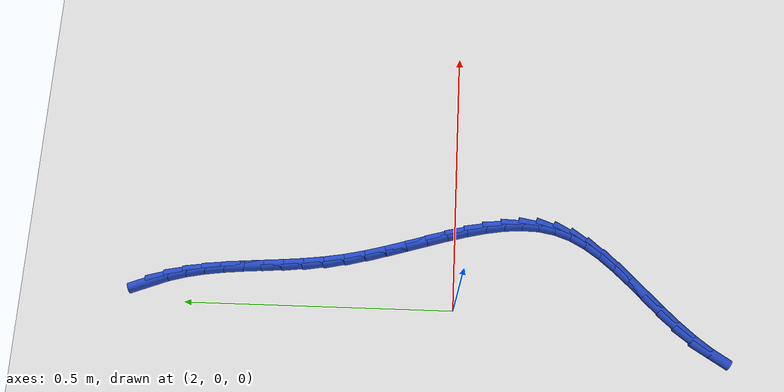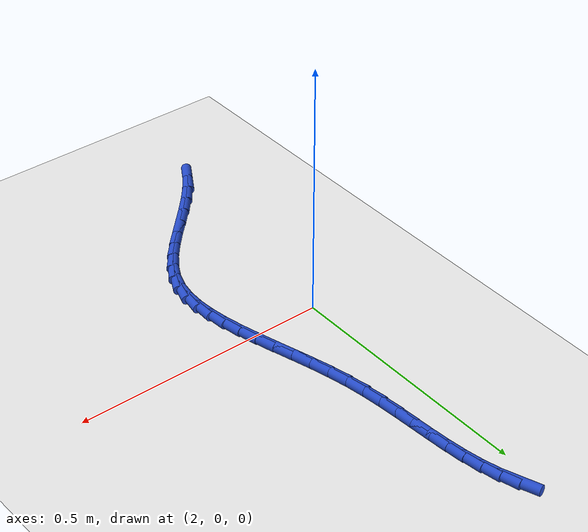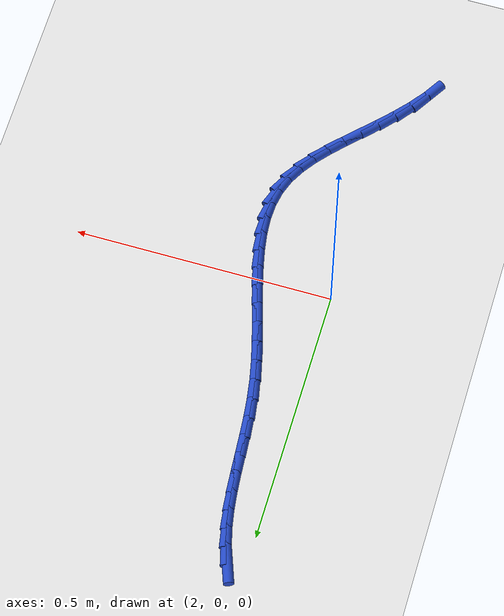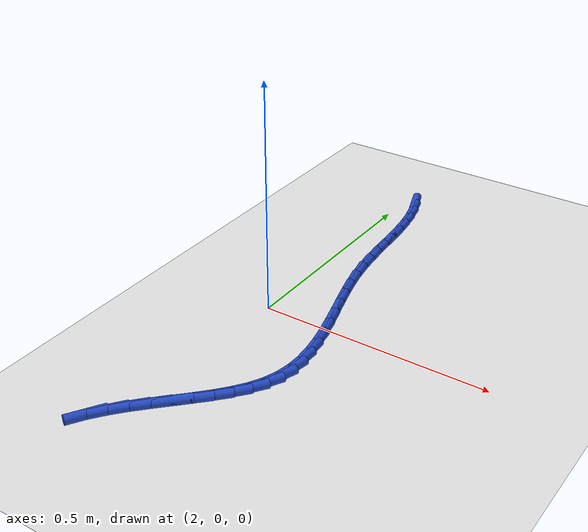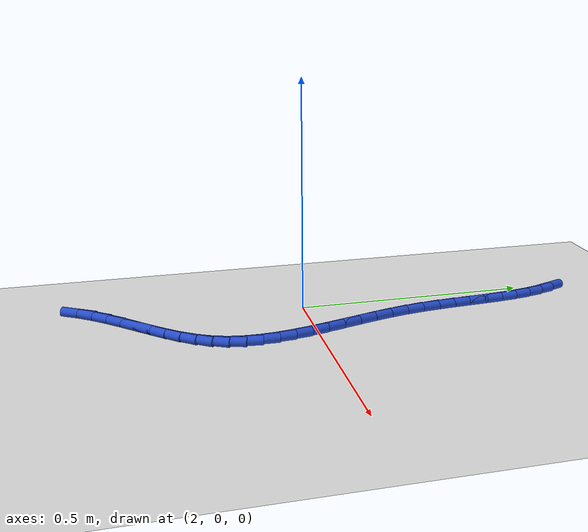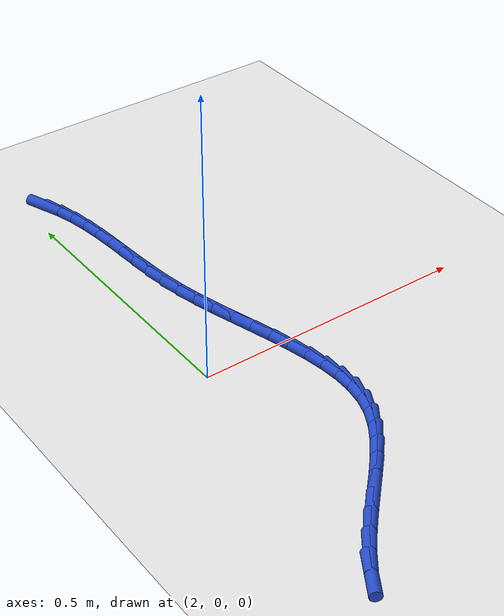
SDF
<sdf version="1.6">
 <world name="default">
  <model name="ground_plane">
   <static>1</static>
   <link name="link">
    <collision name="collision">
     <geometry><plane><normal>0 0 1</normal><size>100 100</size></plane></geometry>
     <surface><friction><ode><mu>100</mu><mu2>50</mu2></ode></friction></surface>
    </collision>
    <visual name="visual">
     <cast_shadows>0</cast_shadows>
     <geometry><plane><normal>0 0 1</normal><size>100 100</size></plane></geometry>
     <material>
      <script><uri>file://media/materials/scripts/gazebo.material</uri><name>Gazebo/WhiteGlow</name></script>
     </material>
    </visual>
   </link>
  </model>
  <model name="line">
   <link name="link_80">
    <pose>2.03491007702347 0.5654002640870707 0.01 0 1.57 -1.2189053734407655</pose>
    <collision name="collision">
     <geometry><cylinder><radius>0.01</radius><length>0.08</length></cylinder></geometry>
    </collision>
    <visual name="visual">
     <material>
      <script><name>Gazebo/Blue</name><uri>file://media/materials/scripts/gazebo.material</uri></script>
     </material>
     <geometry><cylinder><radius>0.01</radius><length>0.08</length></cylinder></geometry>
    </visual>
   </link>
   <link name="link_81">
    <pose>2.0466823082459062 0.5333384439948475 0.01 0 1.57 -1.3125950378642746</pose>
    <collision name="collision">
     <geometry><cylinder><radius>0.01</radius><length>0.08</length></cylinder></geometry>
    </collision>
    <visual name="visual">
     <material>
      <script><name>Gazebo/Blue</name><uri>file://media/materials/scripts/gazebo.material</uri></script>
     </material>
     <geometry><cylinder><radius>0.01</radius><length>0.08</length></cylinder></geometry>
    </visual>
   </link>
   <link name="link_82">
    <pose>2.0554570427227237 0.500112953228699 0.01 0 1.57 -1.3870553838406703</pose>
    <collision name="collision">
     <geometry><cylinder><radius>0.01</radius><length>0.08</length></cylinder></geometry>
    </collision>
    <visual name="visual">
     <material>
      <script><name>Gazebo/Blue</name><uri>file://media/materials/scripts/gazebo.material</uri></script>
     </material>
     <geometry><cylinder><radius>0.01</radius><length>0.08</length></cylinder></geometry>
    </visual>
   </link>
   <link name="link_83">
    <pose>2.061825922090857 0.46584163214674285 0.01 0 1.57 -1.4421148878440995</pose>
    <collision name="collision">
     <geometry><cylinder><radius>0.01</radius><length>0.08</length></cylinder></geometry>
    </collision>
    <visual name="visual">
     <material>
      <script><name>Gazebo/Blue</name><uri>file://media/materials/scripts/gazebo.material</uri></script>
     </material>
     <geometry><cylinder><radius>0.01</radius><length>0.08</length></cylinder></geometry>
    </visual>
   </link>
   <link name="link_84">
    <pose>2.0663805879872403 0.4306423211070963 0.01 0 1.57 -1.4785252347413949</pose>
    <collision name="collision">
     <geometry><cylinder><radius>0.01</radius><length>0.08</length></cylinder></geometry>
    </collision>
    <visual name="visual">
     <material>
      <script><name>Gazebo/Blue</name><uri>file://media/materials/scripts/gazebo.material</uri></script>
     </material>
     <geometry><cylinder><radius>0.01</radius><length>0.08</length></cylinder></geometry>
    </visual>
   </link>
   <link name="link_85">
    <pose>2.0697126820488077 0.39463286046787743 0.01 0 1.57 -1.497331134022991</pose>
    <collision name="collision">
     <geometry><cylinder><radius>0.01</radius><length>0.08</length></cylinder></geometry>
    </collision>
    <visual name="visual">
     <material>
      <script><name>Gazebo/Blue</name><uri>file://media/materials/scripts/gazebo.material</uri></script>
     </material>
     <geometry><cylinder><radius>0.01</radius><length>0.08</length></cylinder></geometry>
    </visual>
   </link>
   <link name="link_86">
    <pose>2.072413845912495 0.3579310905872047 0.01 0 1.57 -1.4995078972231164</pose>
    <collision name="collision">
     <geometry><cylinder><radius>0.01</radius><length>0.08</length></cylinder></geometry>
    </collision>
    <visual name="visual">
     <material>
      <script><name>Gazebo/Blue</name><uri>file://media/materials/scripts/gazebo.material</uri></script>
     </material>
     <geometry><cylinder><radius>0.01</radius><length>0.08</length></cylinder></geometry>
    </visual>
   </link>
   <link name="link_87">
    <pose>2.075075721215234 0.32065485182319464 0.01 0 1.57 -1.485817690421677</pose>
    <collision name="collision">
     <geometry><cylinder><radius>0.01</radius><length>0.08</length></cylinder></geometry>
    </collision>
    <visual name="visual">
     <material>
      <script><name>Gazebo/Blue</name><uri>file://media/materials/scripts/gazebo.material</uri></script>
     </material>
     <geometry><cylinder><radius>0.01</radius><length>0.08</length></cylinder></geometry>
    </visual>
   </link>
   <link name="link_88">
    <pose>2.0782899495939624 0.282921984533966 0.01 0 1.57 -1.456818247511328</pose>
    <collision name="collision">
     <geometry><cylinder><radius>0.01</radius><length>0.08</length></cylinder></geometry>
    </collision>
    <visual name="visual">
     <material>
      <script><name>Gazebo/Blue</name><uri>file://media/materials/scripts/gazebo.material</uri></script>
     </material>
     <geometry><cylinder><radius>0.01</radius><length>0.08</length></cylinder></geometry>
    </visual>
   </link>
   <link name="link_89">
    <pose>2.0826481726856128 0.24485032907763626 0.01 0 1.57 -1.412980651369111</pose>
    <collision name="collision">
     <geometry><cylinder><radius>0.01</radius><length>0.08</length></cylinder></geometry>
    </collision>
    <visual name="visual">
     <material>
      <script><name>Gazebo/Blue</name><uri>file://media/materials/scripts/gazebo.material</uri></script>
     </material>
     <geometry><cylinder><radius>0.01</radius><length>0.08</length></cylinder></geometry>
    </visual>
   </link>
   <link name="link_90">
    <pose>2.0887420205853138 0.2065577260763874 0.01 0 1.57 -1.3606827715645198</pose>
    <collision name="collision">
     <geometry><cylinder><radius>0.01</radius><length>0.08</length></cylinder></geometry>
    </collision>
    <visual name="visual">
     <material>
      <script><name>Gazebo/Blue</name><uri>file://media/materials/scripts/gazebo.material</uri></script>
     </material>
     <geometry><cylinder><radius>0.01</radius><length>0.08</length></cylinder></geometry>
    </visual>
   </link>
   <link name="link_91">
    <pose>2.096929192883644 0.16816736821804593 0.01 0 1.57 -1.3205020482886705</pose>
    <collision name="collision">
     <geometry><cylinder><radius>0.01</radius><length>0.08</length></cylinder></geometry>
    </collision>
    <visual name="visual">
     <material>
      <script><name>Gazebo/Blue</name><uri>file://media/materials/scripts/gazebo.material</uri></script>
     </material>
     <geometry><cylinder><radius>0.01</radius><length>0.08</length></cylinder></geometry>
    </visual>
   </link>
   <link name="link_92">
    <pose>2.10673250894313 0.12982154930679857 0.01 0 1.57 -1.2960196539365378</pose>
    <collision name="collision">
     <geometry><cylinder><radius>0.01</radius><length>0.08</length></cylinder></geometry>
    </collision>
    <visual name="visual">
     <material>
      <script><name>Gazebo/Blue</name><uri>file://media/materials/scripts/gazebo.material</uri></script>
     </material>
     <geometry><cylinder><radius>0.01</radius><length>0.08</length></cylinder></geometry>
    </visual>
   </link>
   <link name="link_93">
    <pose>2.11748861350798 0.09166682261175671 0.01 0 1.57 -1.2866231657273888</pose>
    <collision name="collision">
     <geometry><cylinder><radius>0.01</radius><length>0.08</length></cylinder></geometry>
    </collision>
    <visual name="visual">
     <material>
      <script><name>Gazebo/Blue</name><uri>file://media/materials/scripts/gazebo.material</uri></script>
     </material>
     <geometry><cylinder><radius>0.01</radius><length>0.08</length></cylinder></geometry>
    </visual>
   </link>
   <link name="link_94">
    <pose>2.128534151322399 0.05384974140203034 0.01 0 1.57 -1.292370919327129</pose>
    <collision name="collision">
     <geometry><cylinder><radius>0.01</radius><length>0.08</length></cylinder></geometry>
    </collision>
    <visual name="visual">
     <material>
      <script><name>Gazebo/Blue</name><uri>file://media/materials/scripts/gazebo.material</uri></script>
     </material>
     <geometry><cylinder><radius>0.01</radius><length>0.08</length></cylinder></geometry>
    </visual>
   </link>
   <link name="link_95">
    <pose>2.139205767130596 0.016516858946730772 0.01 0 1.57 -1.3140872493059752</pose>
    <collision name="collision">
     <geometry><cylinder><radius>0.01</radius><length>0.08</length></cylinder></geometry>
    </collision>
    <visual name="visual">
     <material>
      <script><name>Gazebo/Blue</name><uri>file://media/materials/scripts/gazebo.material</uri></script>
     </material>
     <geometry><cylinder><radius>0.01</radius><length>0.08</length></cylinder></geometry>
    </visual>
   </link>
   <link name="link_96">
    <pose>2.148840105676777 -0.020185271485031096 0.01 0 1.57 -1.3534431468996282</pose>
    <collision name="collision">
     <geometry><cylinder><radius>0.01</radius><length>0.08</length></cylinder></geometry>
    </collision>
    <visual name="visual">
     <material>
      <script><name>Gazebo/Blue</name><uri>file://media/materials/scripts/gazebo.material</uri></script>
     </material>
     <geometry><cylinder><radius>0.01</radius><length>0.08</length></cylinder></geometry>
    </visual>
   </link>
   <link name="link_97">
    <pose>2.1567738117051496 -0.05611009662414439 0.01 0 1.57 -1.4129890610221878</pose>
    <collision name="collision">
     <geometry><cylinder><radius>0.01</radius><length>0.08</length></cylinder></geometry>
    </collision>
    <visual name="visual">
     <material>
      <script><name>Gazebo/Blue</name><uri>file://media/materials/scripts/gazebo.material</uri></script>
     </material>
     <geometry><cylinder><radius>0.01</radius><length>0.08</length></cylinder></geometry>
    </visual>
   </link>
   <link name="link_98">
    <pose>2.1623435299599203 -0.09111106320149759 0.01 0 1.57 -1.4960072965898743</pose>
    <collision name="collision">
     <geometry><cylinder><radius>0.01</radius><length>0.08</length></cylinder></geometry>
    </collision>
    <visual name="visual">
     <material>
      <script><name>Gazebo/Blue</name><uri>file://media/materials/scripts/gazebo.material</uri></script>
     </material>
     <geometry><cylinder><radius>0.01</radius><length>0.08</length></cylinder></geometry>
    </visual>
   </link>
   <link name="link_99">
    <pose>2.1648859051852964 -0.12504161794798122 0.01 0 1.57 1.5357084084011936</pose>
    <collision name="collision">
     <geometry><cylinder><radius>0.01</radius><length>0.08</length></cylinder></geometry>
    </collision>
    <visual name="visual">
     <material>
      <script><name>Gazebo/Blue</name><uri>file://media/materials/scripts/gazebo.material</uri></script>
     </material>
     <geometry><cylinder><radius>0.01</radius><length>0.08</length></cylinder></geometry>
    </visual>
   </link>
   <link name="link_100">
    <pose>2.163737582125486 -0.15775520759448367 0.01 0 1.57 1.3970519715082832</pose>
    <collision name="collision">
     <geometry><cylinder><radius>0.01</radius><length>0.08</length></cylinder></geometry>
    </collision>
    <visual name="visual">
     <material>
      <script><name>Gazebo/Blue</name><uri>file://media/materials/scripts/gazebo.material</uri></script>
     </material>
     <geometry><cylinder><radius>0.01</radius><length>0.08</length></cylinder></geometry>
    </visual>
   </link>
   <link name="link_101">
    <pose>2.158235205524694 -0.18910527887189404 0.01 0 1.57 1.2331032519797185</pose>
    <collision name="collision">
     <geometry><cylinder><radius>0.01</radius><length>0.08</length></cylinder></geometry>
    </collision>
    <visual name="visual">
     <material>
      <script><name>Gazebo/Blue</name><uri>file://media/materials/scripts/gazebo.material</uri></script>
     </material>
     <geometry><cylinder><radius>0.01</radius><length>0.08</length></cylinder></geometry>
    </visual>
   </link>
   <link name="link_102">
    <pose>2.1477526908953486 -0.21895779679196442 0.01 0 1.57 1.076964509107271</pose>
    <collision name="collision">
     <geometry><cylinder><radius>0.01</radius><length>0.08</length></cylinder></geometry>
    </collision>
    <visual name="visual">
     <material>
      <script><name>Gazebo/Blue</name><uri>file://media/materials/scripts/gazebo.material</uri></script>
     </material>
     <geometry><cylinder><radius>0.01</radius><length>0.08</length></cylinder></geometry>
    </visual>
   </link>
   <link name="link_103">
    <pose>2.132423467550427 -0.24743382728141924 0.01 0 1.57 0.9573256536511691</pose>
    <collision name="collision">
     <geometry><cylinder><radius>0.01</radius><length>0.08</length></cylinder></geometry>
    </collision>
    <visual name="visual">
     <material>
      <script><name>Gazebo/Blue</name><uri>file://media/materials/scripts/gazebo.material</uri></script>
     </material>
     <geometry><cylinder><radius>0.01</radius><length>0.08</length></cylinder></geometry>
    </visual>
   </link>
   <link name="link_104">
    <pose>2.113089859695863 -0.27489253560853727 0.01 0 1.57 0.8732656196307961</pose>
    <collision name="collision">
     <geometry><cylinder><radius>0.01</radius><length>0.08</length></cylinder></geometry>
    </collision>
    <visual name="visual">
     <material>
      <script><name>Gazebo/Blue</name><uri>file://media/materials/scripts/gazebo.material</uri></script>
     </material>
     <geometry><cylinder><radius>0.01</radius><length>0.08</length></cylinder></geometry>
    </visual>
   </link>
   <link name="link_105">
    <pose>2.090621323424948 -0.30170219993629904 0.01 0 1.57 0.8203972897205317</pose>
    <collision name="collision">
     <geometry><cylinder><radius>0.01</radius><length>0.08</length></cylinder></geometry>
    </collision>
    <visual name="visual">
     <material>
      <script><name>Gazebo/Blue</name><uri>file://media/materials/scripts/gazebo.material</uri></script>
     </material>
     <geometry><cylinder><radius>0.01</radius><length>0.08</length></cylinder></geometry>
    </visual>
   </link>
   <link name="link_106">
    <pose>2.06588731483097 -0.32823109842768683 0.01 0 1.57 0.7946191127016763</pose>
    <collision name="collision">
     <geometry><cylinder><radius>0.01</radius><length>0.08</length></cylinder></geometry>
    </collision>
    <visual name="visual">
     <material>
      <script><name>Gazebo/Blue</name><uri>file://media/materials/scripts/gazebo.material</uri></script>
     </material>
     <geometry><cylinder><radius>0.01</radius><length>0.08</length></cylinder></geometry>
    </visual>
   </link>
   <link name="link_107">
    <pose>2.0397572900072216 -0.3548475092456814 0.01 0 1.57 0.7931334592555761</pose>
    <collision name="collision">
     <geometry><cylinder><radius>0.01</radius><length>0.08</length></cylinder></geometry>
    </collision>
    <visual name="visual">
     <material>
      <script><name>Gazebo/Blue</name><uri>file://media/materials/scripts/gazebo.material</uri></script>
     </material>
     <geometry><cylinder><radius>0.01</radius><length>0.08</length></cylinder></geometry>
    </visual>
   </link>
   <link name="link_108">
    <pose>2.0131007050469925 -0.3819197105532639 0.01 0 1.57 0.8145834205887257</pose>
    <collision name="collision">
     <geometry><cylinder><radius>0.01</radius><length>0.08</length></cylinder></geometry>
    </collision>
    <visual name="visual">
     <material>
      <script><name>Gazebo/Blue</name><uri>file://media/materials/scripts/gazebo.material</uri></script>
     </material>
     <geometry><cylinder><radius>0.01</radius><length>0.08</length></cylinder></geometry>
    </visual>
   </link>
   <link name="link_109">
    <pose>1.9867870160435726 -0.40981598051341545 0.01 0 1.57 0.8588454937834629</pose>
    <collision name="collision">
     <geometry><cylinder><radius>0.01</radius><length>0.08</length></cylinder></geometry>
    </collision>
    <visual name="visual">
     <material>
      <script><name>Gazebo/Blue</name><uri>file://media/materials/scripts/gazebo.material</uri></script>
     </material>
     <geometry><cylinder><radius>0.01</radius><length>0.08</length></cylinder></geometry>
    </visual>
   </link>
   <link name="link_110">
    <pose>1.9616856790902524 -0.4389045972891173 0.01 0 1.57 0.9266148831271105</pose>
    <collision name="collision">
     <geometry><cylinder><radius>0.01</radius><length>0.08</length></cylinder></geometry>
    </collision>
    <visual name="visual">
     <material>
      <script><name>Gazebo/Blue</name><uri>file://media/materials/scripts/gazebo.material</uri></script>
     </material>
     <geometry><cylinder><radius>0.01</radius><length>0.08</length></cylinder></geometry>
    </visual>
   </link>
   <link name="link_111">
    <pose>1.9386661502803226 -0.46955383904335063 0.01 0 1.57 1.0186922818919242</pose>
    <collision name="collision">
     <geometry><cylinder><radius>0.01</radius><length>0.08</length></cylinder></geometry>
    </collision>
    <visual name="visual">
     <material>
      <script><name>Gazebo/Blue</name><uri>file://media/materials/scripts/gazebo.material</uri></script>
     </material>
     <geometry><cylinder><radius>0.01</radius><length>0.08</length></cylinder></geometry>
    </visual>
   </link>
  </model>
 </world>
</sdf>
